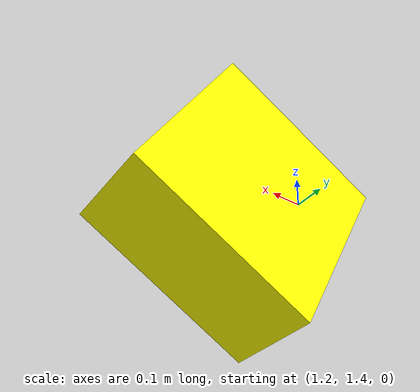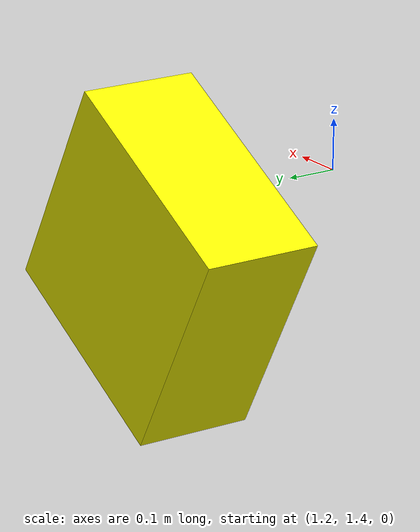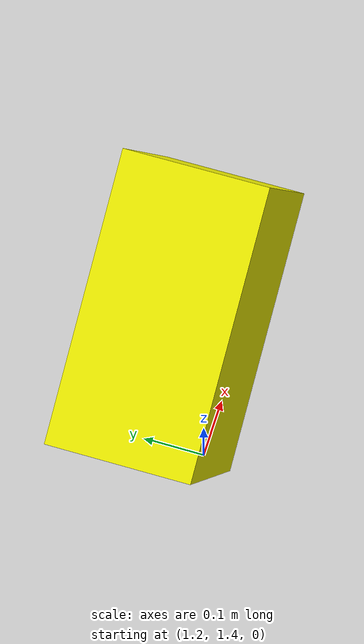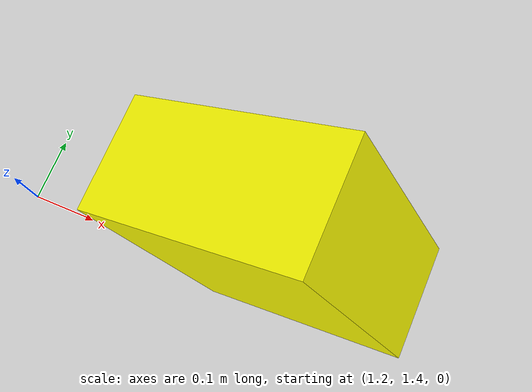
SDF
<?xml version="1.0" ?>
<sdf version="1.5">
  <model name="box">
    <link name="side_ramp">
      <inertial>
        <mass>0.1</mass>
      </inertial>
      <visual name="visual">
        <pose>1.55 1.55 -0.25 0 -0.5 0</pose>
        <geometry>
          <box>
            <size>0.5 0.25 0.5</size>
          </box>
        </geometry>
        <material>
            <diffuse>1 1 0 1</diffuse>
        </material>
      </visual>
      <collision name="collision">
        <pose>1.55 1.55 -0.25 0 -0.5 0</pose>
        <geometry>
          <box>
            <size>0.5 0.25 0.5</size>
          </box>
        </geometry>
      </collision>
    </link>
  </model>

</sdf>
